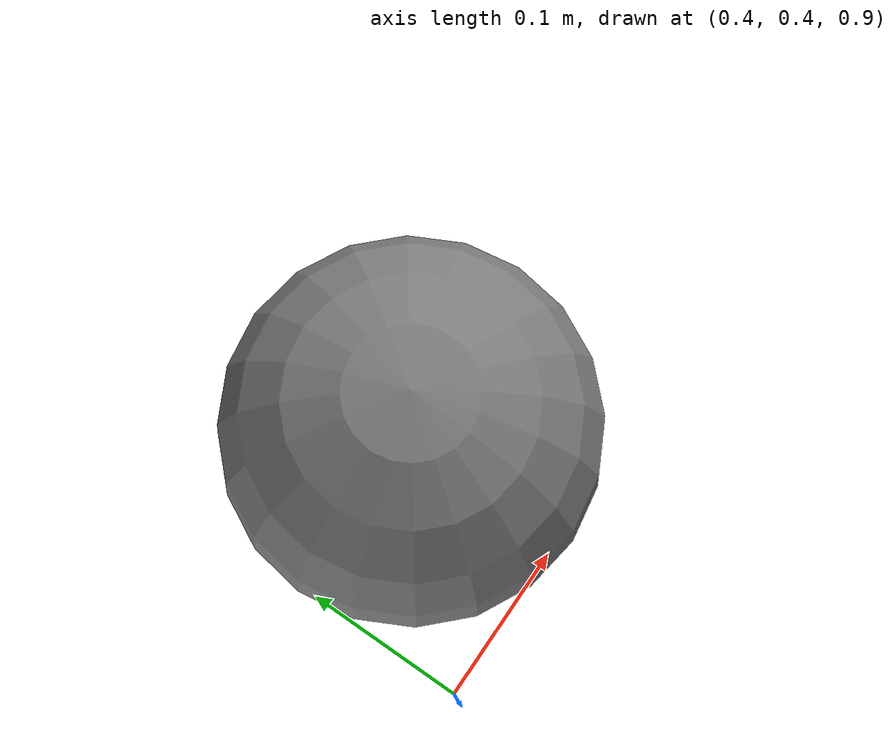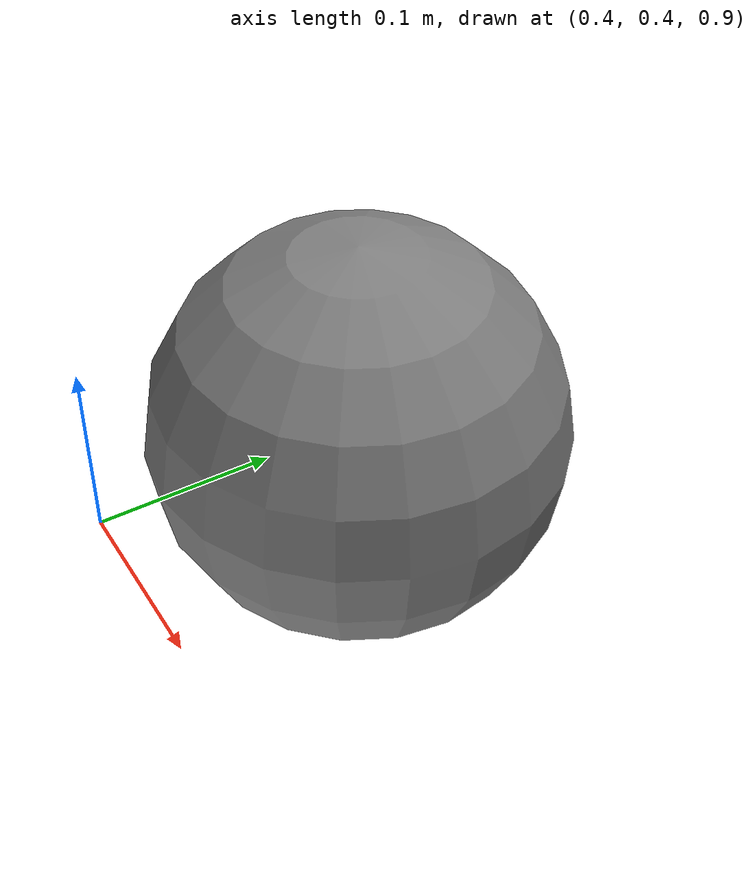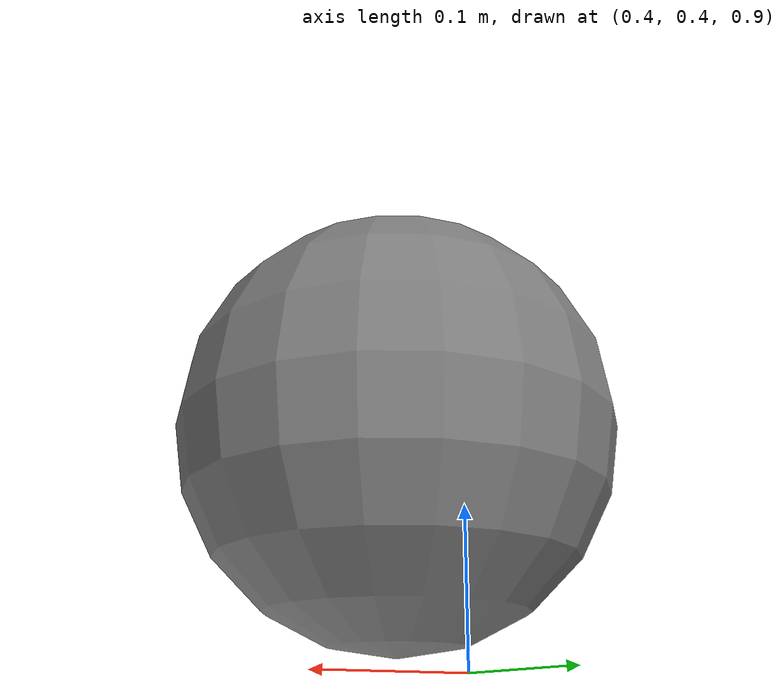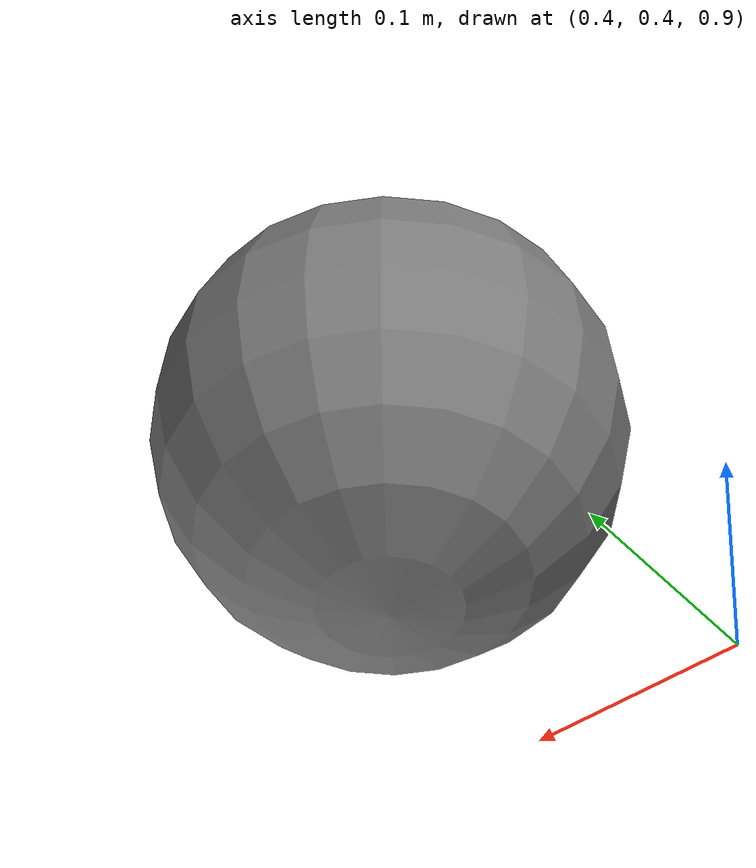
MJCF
<mujoco model="two_hinges_one_body">
            <option gravity="0 0 -9.81" timestep="0.001"/>
            <worldbody>
                <body name="link" pos="0 0 1">
                    <joint type="hinge" axis="1 0 0" name="hinge_x"/>
                    <joint type="hinge" axis="0 1 0" name="hinge_y"/>
                    <geom type="sphere" size="0.1" pos="0.5 0.5 0" mass="1.0"/>
                </body>
            </worldbody>
        </mujoco>
